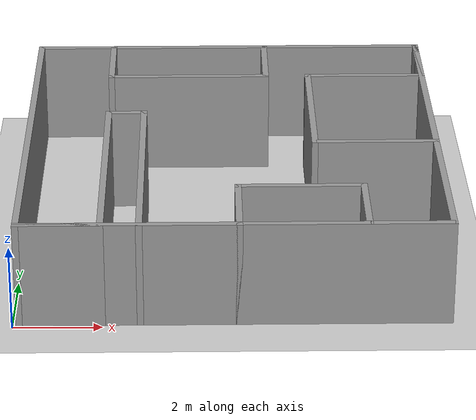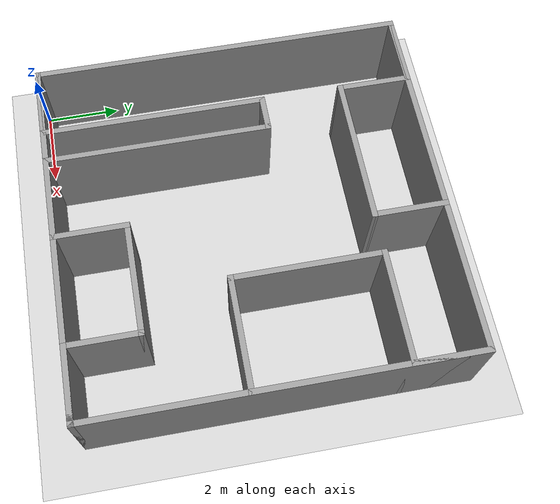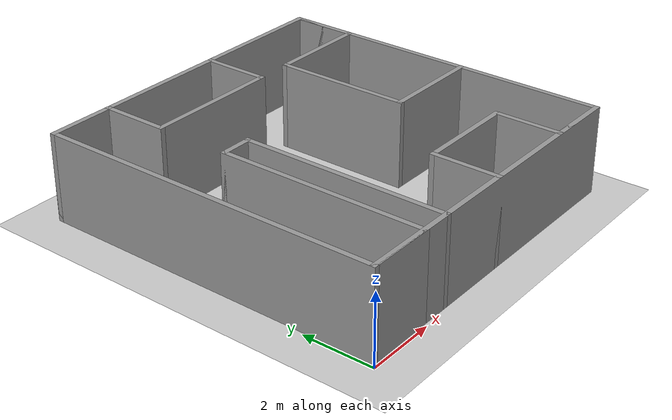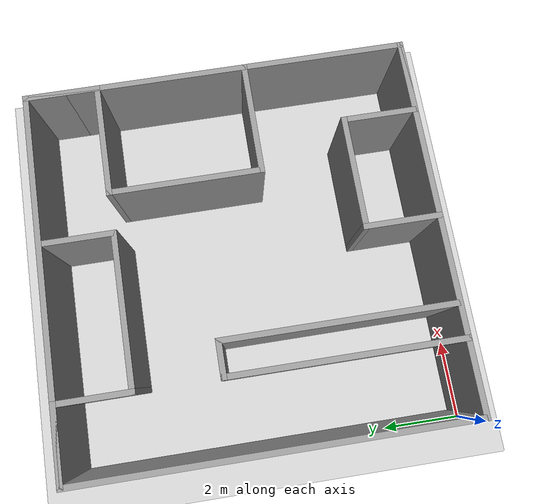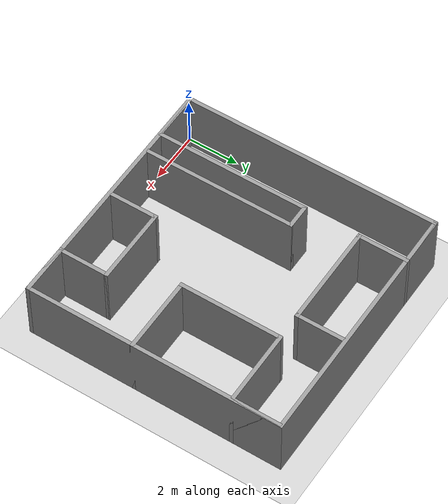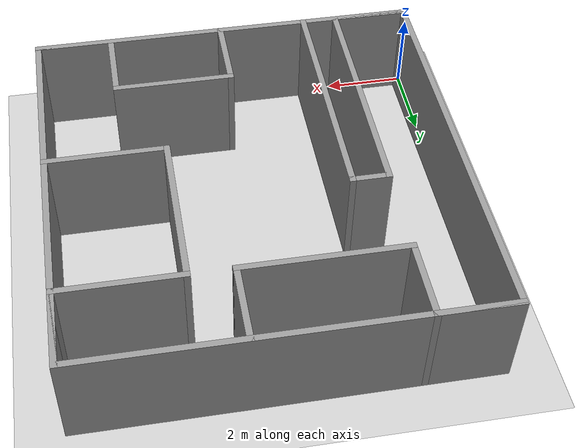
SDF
<sdf version="1.6">
 <world name="default">
  <light name="sun" type="directional">
   <pose>0 0 10 0 -0 0</pose>
   <diffuse>0.8 0.8 0.8 1</diffuse>
   <specular>0.2 0.2 0.2 1</specular>
   <attenuation>
    <range>1000</range>
    <constant>0.9</constant>
    <linear>0.01</linear>
    <quadratic>0.001</quadratic>
   </attenuation>
   <direction>-0.5 0.1 -0.9</direction>
  </light>
  <model name="ground_plane">
   <static>1</static>
   <link name="link">
    <collision name="collision">
     <geometry><plane><normal>0 0 1</normal><size>100 100</size></plane></geometry>
     <surface><friction><ode><mu>100</mu><mu2>50</mu2></ode></friction></surface>
    </collision>
    <visual name="visual">
     <cast_shadows>0</cast_shadows>
     <geometry><plane><normal>0 0 1</normal><size>100 100</size></plane></geometry>
     <material>
      <script><uri>file://media/materials/scripts/gazebo.material</uri><name>Gazebo/Grey</name></script>
     </material>
    </visual>
   </link>
  </model>
  <gravity>0 0 -9.8</gravity>
  <magnetic_field>6e-06 2.3e-05 -4.2e-05</magnetic_field>
  <atmosphere type="adiabatic"/>
  <physics name="default_physics" default="0" type="ode">
   <max_step_size>0.001</max_step_size>
   <real_time_factor>1</real_time_factor>
   <real_time_update_rate>1000</real_time_update_rate>
  </physics>
  <scene><ambient>0.4 0.4 0.4 1</ambient><background>0.7 0.7 0.7 1</background><shadows>1</shadows></scene>
  <audio><device>default</device></audio>
  <spherical_coordinates>
   <surface_model>EARTH_WGS84</surface_model>
   <latitude_deg>0</latitude_deg>
   <longitude_deg>0</longitude_deg>
   <elevation>0</elevation>
   <heading_deg>0</heading_deg>
  </spherical_coordinates>
  <model name="Untitled">
   <pose>4.93548 5.07755 0 0 -0 1.57143</pose>
   <link name="Wall_1">
    <collision name="Wall_1_Collision">
     <geometry><box><size>10 0.15 2.5</size></box></geometry>
     <pose>0 0 1.25 0 -0 0</pose>
    </collision>
    <visual name="Wall_1_Visual">
     <pose>0 0 1.25 0 -0 0</pose>
     <geometry><box><size>10 0.15 2.5</size></box></geometry>
     <material>
      <script><uri>file://media/materials/scripts/gazebo.material</uri><name>Gazebo/Grey</name></script>
      <ambient>1 1 1 1</ambient>
     </material>
     <meta><layer>0</layer></meta>
    </visual>
    <pose>0 -4.8 0 0 -0 0</pose>
   </link>
   <link name="Wall_10">
    <collision name="Wall_10_Collision">
     <geometry><box><size>6 0.15 2.5</size></box></geometry>
     <pose>0 0 1.25 0 -0 0</pose>
    </collision>
    <visual name="Wall_10_Visual">
     <pose>0 0 1.25 0 -0 0</pose>
     <geometry><box><size>6 0.15 2.5</size></box></geometry>
     <material>
      <script><uri>file://media/materials/scripts/gazebo.material</uri><name>Gazebo/Grey</name></script>
      <ambient>1 1 1 1</ambient>
     </material>
     <meta><layer>0</layer></meta>
    </visual>
    <pose>-2 2.1 0 0 -0 3.14159</pose>
   </link>
   <link name="Wall_13">
    <collision name="Wall_13_Collision">
     <geometry><box><size>2 0.15 2.5</size></box></geometry>
     <pose>0 0 1.25 0 -0 0</pose>
    </collision>
    <visual name="Wall_13_Visual">
     <pose>0 0 1.25 0 -0 0</pose>
     <geometry><box><size>2 0.15 2.5</size></box></geometry>
     <material>
      <script><uri>file://media/materials/scripts/gazebo.material</uri><name>Gazebo/Grey</name></script>
      <ambient>1 1 1 1</ambient>
     </material>
     <meta><layer>0</layer></meta>
    </visual>
    <pose>4.925 3.875 0 0 -0 -1.5708</pose>
   </link>
   <link name="Wall_14">
    <collision name="Wall_14_Collision">
     <geometry><box><size>2 0.15 2.5</size></box></geometry>
     <pose>0 0 1.25 0 -0 0</pose>
    </collision>
    <visual name="Wall_14_Visual">
     <pose>0 0 1.25 0 -0 0</pose>
     <geometry><box><size>2 0.15 2.5</size></box></geometry>
     <material>
      <script><uri>file://media/materials/scripts/gazebo.material</uri><name>Gazebo/Grey</name></script>
      <ambient>1 1 1 1</ambient>
     </material>
     <meta><layer>0</layer></meta>
    </visual>
    <pose>4 2.95 0 0 -0 3.14159</pose>
   </link>
   <link name="Wall_15">
    <collision name="Wall_15_Collision">
     <geometry><box><size>4 0.15 2.5</size></box></geometry>
     <pose>0 0 1.25 0 -0 0</pose>
    </collision>
    <visual name="Wall_15_Visual">
     <pose>0 0 1.25 0 -0 0</pose>
     <geometry><box><size>4 0.15 2.5</size></box></geometry>
     <material>
      <script><uri>file://media/materials/scripts/gazebo.material</uri><name>Gazebo/Grey</name></script>
      <ambient>1 1 1 1</ambient>
     </material>
     <meta><layer>0</layer></meta>
    </visual>
    <pose>3.075 1.025 0 0 -0 -1.5708</pose>
   </link>
   <link name="Wall_16">
    <collision name="Wall_16_Collision">
     <geometry><box><size>2 0.15 2.5</size></box></geometry>
     <pose>0 0 1.25 0 -0 0</pose>
    </collision>
    <visual name="Wall_16_Visual">
     <pose>0 0 1.25 0 -0 0</pose>
     <geometry><box><size>2 0.15 2.5</size></box></geometry>
     <material>
      <script><uri>file://media/materials/scripts/gazebo.material</uri><name>Gazebo/Grey</name></script>
      <ambient>1 1 1 1</ambient>
     </material>
     <meta><layer>0</layer></meta>
    </visual>
    <pose>4 -0.9 0 0 -0 0</pose>
   </link>
   <link name="Wall_18">
    <collision name="Wall_18_Collision">
     <geometry><box><size>2 0.15 2.5</size></box></geometry>
     <pose>0 0 1.25 0 -0 0</pose>
    </collision>
    <visual name="Wall_18_Visual">
     <pose>0 0 1.25 0 -0 0</pose>
     <geometry><box><size>2 0.15 2.5</size></box></geometry>
     <material>
      <script><uri>file://media/materials/scripts/gazebo.material</uri><name>Gazebo/Grey</name></script>
      <ambient>1 1 1 1</ambient>
     </material>
     <meta><layer>0</layer></meta>
    </visual>
    <pose>4 -4.8 0 0 -0 3.14159</pose>
   </link>
   <link name="Wall_19">
    <collision name="Wall_19_Collision">
     <geometry><box><size>3 0.15 2.5</size></box></geometry>
     <pose>0 0 1.25 0 -0 0</pose>
    </collision>
    <visual name="Wall_19_Visual">
     <pose>0 0 1.25 0 -0 0</pose>
     <geometry><box><size>3 0.15 2.5</size></box></geometry>
     <material>
      <script><uri>file://media/materials/scripts/gazebo.material</uri><name>Gazebo/Grey</name></script>
      <ambient>1 1 1 1</ambient>
     </material>
     <meta><layer>0</layer></meta>
    </visual>
    <pose>3.075 -3.375 0 0 -0 1.5708</pose>
   </link>
   <link name="Wall_2">
    <collision name="Wall_2_Collision">
     <geometry><box><size>9.75 0.15 2.5</size></box></geometry>
     <pose>0 0 1.25 0 -0 0</pose>
    </collision>
    <visual name="Wall_2_Visual">
     <pose>0 0 1.25 0 -0 0</pose>
     <geometry><box><size>9.75 0.15 2.5</size></box></geometry>
     <material>
      <script><uri>file://media/materials/scripts/gazebo.material</uri><name>Gazebo/Grey</name></script>
      <ambient>1 1 1 1</ambient>
     </material>
     <meta><layer>0</layer></meta>
    </visual>
    <pose>4.925 0 0 0 -0 1.5708</pose>
   </link>
   <link name="Wall_20">
    <collision name="Wall_20_Collision">
     <geometry><box><size>4 0.15 2.5</size></box></geometry>
     <pose>0 0 1.25 0 -0 0</pose>
    </collision>
    <visual name="Wall_20_Visual">
     <pose>0 0 1.25 0 -0 0</pose>
     <geometry><box><size>4 0.15 2.5</size></box></geometry>
     <material>
      <script><uri>file://media/materials/scripts/gazebo.material</uri><name>Gazebo/Grey</name></script>
      <ambient>1 1 1 1</ambient>
     </material>
     <meta><layer>0</layer></meta>
    </visual>
    <pose>1.15 -1.95 0 0 -0 3.14159</pose>
   </link>
   <link name="Wall_21">
    <collision name="Wall_21_Collision">
     <geometry><box><size>3 0.15 2.5</size></box></geometry>
     <pose>0 0 1.25 0 -0 0</pose>
    </collision>
    <visual name="Wall_21_Visual">
     <pose>0 0 1.25 0 -0 0</pose>
     <geometry><box><size>3 0.15 2.5</size></box></geometry>
     <material>
      <script><uri>file://media/materials/scripts/gazebo.material</uri><name>Gazebo/Grey</name></script>
      <ambient>1 1 1 1</ambient>
     </material>
     <meta><layer>0</layer></meta>
    </visual>
    <pose>-0.775 -3.375 0 0 -0 -1.5708</pose>
   </link>
   <link name="Wall_23">
    <collision name="Wall_23_Collision">
     <geometry><box><size>2 0.15 2.5</size></box></geometry>
     <pose>0 0 1.25 0 -0 0</pose>
    </collision>
    <visual name="Wall_23_Visual">
     <pose>0 0 1.25 0 -0 0</pose>
     <geometry><box><size>2 0.15 2.5</size></box></geometry>
     <material>
      <script><uri>file://media/materials/scripts/gazebo.material</uri><name>Gazebo/Grey</name></script>
      <ambient>1 1 1 1</ambient>
     </material>
     <meta><layer>0</layer></meta>
    </visual>
    <pose>-4.925 -3.875 0 0 -0 1.5708</pose>
   </link>
   <link name="Wall_24">
    <collision name="Wall_24_Collision">
     <geometry><box><size>2 0.15 2.5</size></box></geometry>
     <pose>0 0 1.25 0 -0 0</pose>
    </collision>
    <visual name="Wall_24_Visual">
     <pose>0 0 1.25 0 -0 0</pose>
     <geometry><box><size>2 0.15 2.5</size></box></geometry>
     <material>
      <script><uri>file://media/materials/scripts/gazebo.material</uri><name>Gazebo/Grey</name></script>
      <ambient>1 1 1 1</ambient>
     </material>
     <meta><layer>0</layer></meta>
    </visual>
    <pose>-4 -2.95 0 0 -0 0</pose>
   </link>
   <link name="Wall_25">
    <collision name="Wall_25_Collision">
     <geometry><box><size>3 0.15 2.5</size></box></geometry>
     <pose>0 0 1.25 0 -0 0</pose>
    </collision>
    <visual name="Wall_25_Visual">
     <pose>0 0 1.25 0 -0 0</pose>
     <geometry><box><size>3 0.15 2.5</size></box></geometry>
     <material>
      <script><uri>file://media/materials/scripts/gazebo.material</uri><name>Gazebo/Grey</name></script>
      <ambient>1 1 1 1</ambient>
     </material>
     <meta><layer>0</layer></meta>
    </visual>
    <pose>-3.075 -1.525 0 0 -0 1.5708</pose>
   </link>
   <link name="Wall_26">
    <collision name="Wall_26_Collision">
     <geometry><box><size>2 0.15 2.5</size></box></geometry>
     <pose>0 0 1.25 0 -0 0</pose>
    </collision>
    <visual name="Wall_26_Visual">
     <pose>0 0 1.25 0 -0 0</pose>
     <geometry><box><size>2 0.15 2.5</size></box></geometry>
     <material>
      <script><uri>file://media/materials/scripts/gazebo.material</uri><name>Gazebo/Grey</name></script>
      <ambient>1 1 1 1</ambient>
     </material>
     <meta><layer>0</layer></meta>
    </visual>
    <pose>-4 -0.1 0 0 -0 3.14159</pose>
   </link>
   <link name="Wall_3">
    <collision name="Wall_3_Collision">
     <geometry><box><size>10 0.15 2.5</size></box></geometry>
     <pose>0 0 1.25 0 -0 0</pose>
    </collision>
    <visual name="Wall_3_Visual">
     <pose>0 0 1.25 0 -0 0</pose>
     <geometry><box><size>10 0.15 2.5</size></box></geometry>
     <material>
      <script><uri>file://media/materials/scripts/gazebo.material</uri><name>Gazebo/Grey</name></script>
      <ambient>1 1 1 1</ambient>
     </material>
     <meta><layer>0</layer></meta>
    </visual>
    <pose>0 4.8 0 0 -0 3.14159</pose>
   </link>
   <link name="Wall_4">
    <collision name="Wall_4_Collision">
     <geometry><box><size>9.75 0.15 2.5</size></box></geometry>
     <pose>0 0 1.25 0 -0 0</pose>
    </collision>
    <visual name="Wall_4_Visual">
     <pose>0 0 1.25 0 -0 0</pose>
     <geometry><box><size>9.75 0.15 2.5</size></box></geometry>
     <material>
      <script><uri>file://media/materials/scripts/gazebo.material</uri><name>Gazebo/Grey</name></script>
      <ambient>1 1 1 1</ambient>
     </material>
     <meta><layer>0</layer></meta>
    </visual>
    <pose>-4.925 0 0 0 -0 -1.5708</pose>
   </link>
   <link name="Wall_7">
    <collision name="Wall_7_Collision">
     <geometry><box><size>2 0.15 2.5</size></box></geometry>
     <pose>0 0 1.25 0 -0 0</pose>
    </collision>
    <visual name="Wall_7_Visual">
     <pose>0 0 1.25 0 -0 0</pose>
     <geometry><box><size>2 0.15 2.5</size></box></geometry>
     <material>
      <script><uri>file://media/materials/scripts/gazebo.material</uri><name>Gazebo/Grey</name></script>
      <ambient>1 1 1 1</ambient>
     </material>
     <meta><layer>0</layer></meta>
    </visual>
    <pose>-4.925 3.875 0 0 -0 -1.5708</pose>
   </link>
   <link name="Wall_8">
    <collision name="Wall_8_Collision">
     <geometry><box><size>6 0.15 2.5</size></box></geometry>
     <pose>0 0 1.25 0 -0 0</pose>
    </collision>
    <visual name="Wall_8_Visual">
     <pose>0 0 1.25 0 -0 0</pose>
     <geometry><box><size>6 0.15 2.5</size></box></geometry>
     <material>
      <script><uri>file://media/materials/scripts/gazebo.material</uri><name>Gazebo/Grey</name></script>
      <ambient>1 1 1 1</ambient>
     </material>
     <meta><layer>0</layer></meta>
    </visual>
    <pose>-2 2.95 0 0 -0 0</pose>
   </link>
   <link name="Wall_9">
    <collision name="Wall_9_Collision">
     <geometry><box><size>1 0.15 2.5</size></box></geometry>
     <pose>0 0 1.25 0 -0 0</pose>
    </collision>
    <visual name="Wall_9_Visual">
     <pose>0 0 1.25 0 -0 0</pose>
     <geometry><box><size>1 0.15 2.5</size></box></geometry>
     <material>
      <script><uri>file://media/materials/scripts/gazebo.material</uri><name>Gazebo/Grey</name></script>
      <ambient>1 1 1 1</ambient>
     </material>
     <meta><layer>0</layer></meta>
    </visual>
    <pose>0.925 2.525 0 0 -0 -1.5708</pose>
   </link>
   <static>1</static>
  </model>
 </world>
</sdf>
